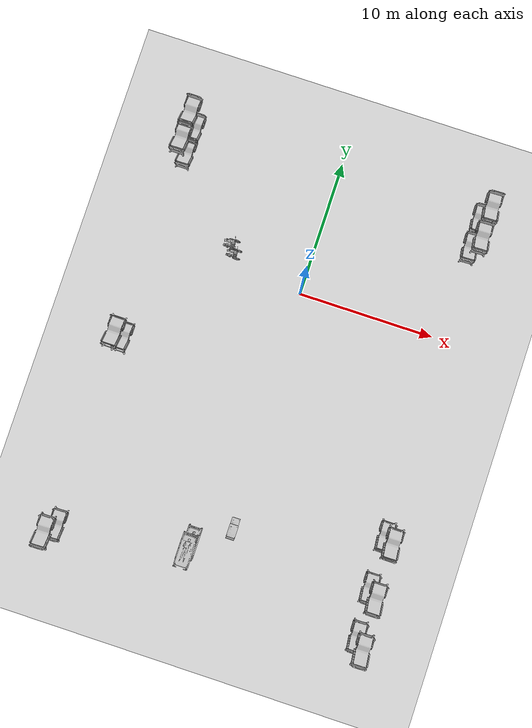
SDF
<sdf version="1.6">
 <world name="world">
  <gravity>0 0 -9.8</gravity>
  <physics default="0" name="default_physics" type="ode">
   <max_step_size>0.001</max_step_size>
   <real_time_factor>1</real_time_factor>
   <real_time_update_rate>1000</real_time_update_rate>
  </physics>
  <scene><ambient>0.6 0.6 0.6 1</ambient><background>0.4 0.4 0.4 1</background><shadows>false</shadows></scene>
  <plugin filename="gz-sim-physics-system" name="gz::sim::systems::Physics"/>
  <plugin filename="gz-sim-user-commands-system" name="gz::sim::systems::UserCommands"/>
  <plugin filename="gz-sim-scene-broadcaster-system" name="gz::sim::systems::SceneBroadcaster"/>
  <plugin filename="gz-sim-sensors-system" name="gz::sim::systems::Sensors">
   <render_engine>ogre2</render_engine>
  </plugin>
  <plugin filename="gz-sim-imu-system" name="gz::sim::systems::Imu"/>
  <plugin filename="gz-sim-contact-system" name="gz::sim::systems::Contact"/>
  <include><uri>model://sun</uri></include>
  <include><uri>model://ground_plane</uri><pose>0 0 -0.1 0 -0 0</pose></include>
  <include>
   <uri>model://CGMClassic</uri>
   <static>true</static>
   <name>CGMClassic_1</name>
   <pose>11.1777 -18.4129 0 0 0 -3.13719</pose>
  </include>
  <include>
   <uri>model://CGMClassic</uri>
   <static>true</static>
   <name>CGMClassic_2</name>
   <pose>11.1179 -14.6493 0 0 0 -3.13599</pose>
  </include>
  <include>
   <uri>model://PatientWheelChair</uri>
   <static>true</static>
   <name>PatientWheelChair_1</name>
   <pose>-5.46091 1.23577 0 0 0 -1.54828</pose>
  </include>
  <include>
   <uri>model://CGMClassic</uri>
   <static>true</static>
   <name>CGMClassic_3</name>
   <pose>-11.2304 -21.1134 0 0 0 -3.11834</pose>
  </include>
  <include>
   <uri>model://CGMClassic</uri>
   <static>true</static>
   <name>CGMClassic_4</name>
   <pose>-11.0878 -7.00992 0 0 -0 3.1351</pose>
  </include>
  <include>
   <uri>model://CGMClassic</uri>
   <static>true</static>
   <name>CGMClassic_5</name>
   <pose>-11.0106 8.9505 -0.008203 -0.035019 -0.000392 3.13388</pose>
  </include>
  <include>
   <uri>model://CGMClassic</uri>
   <static>true</static>
   <name>CGMClassic_6</name>
   <pose>-11.025 7.10335 0 -0.035021 1.8e-05 -3.13762</pose>
  </include>
  <include>
   <uri>model://TrolleyBedPatient</uri>
   <static>true</static>
   <name>TrolleyBedPatient_1</name>
   <pose>-1.83202 -19.2612 0 0 -0 0</pose>
  </include>
  <include>
   <uri>model://CGMClassic</uri>
   <static>true</static>
   <name>CGMClassic_7</name>
   <pose>10.6166 9.06291 -0.008203 -0.03501 0.000885 -3.11285</pose>
  </include>
  <include>
   <uri>model://CGMClassic</uri>
   <static>true</static>
   <name>CGMClassic_8</name>
   <pose>10.6006 6.90956 -0.008203 -0.035003 0.001133 -3.10576</pose>
  </include>
  <include>
   <uri>model://ParkingTrolleyMin</uri>
   <static>true</static>
   <name>ParkingTrolleyMin_1</name>
   <pose>0.715846 -17.1496 -0.000121 -1e-06 -0 0</pose>
  </include>
  <include>
   <uri>model://CGMClassic</uri>
   <static>true</static>
   <name>CGMClassic_9</name>
   <pose>11.3613 -21.8867 0 0 0 -3.12292</pose>
  </include>
  <include>
   <uri>model://CGMClassic</uri>
   <static>true</static>
   <name>floor_1_CGMClassic_1</name>
   <pose>11.1777 -18.4129 3.0 0 0 -3.13719</pose>
  </include>
  <include>
   <uri>model://CGMClassic</uri>
   <static>true</static>
   <name>floor_1_CGMClassic_2</name>
   <pose>11.1179 -14.6493 3.0 0 0 -3.13599</pose>
  </include>
  <include>
   <uri>model://PatientWheelChair</uri>
   <static>true</static>
   <name>floor_1_PatientWheelChair_1</name>
   <pose>-5.46091 1.23577 3.0 0 0 -1.54828</pose>
  </include>
  <include>
   <uri>model://CGMClassic</uri>
   <static>true</static>
   <name>floor_1_CGMClassic_3</name>
   <pose>-11.2304 -21.1134 3.0 0 0 -3.11834</pose>
  </include>
  <include>
   <uri>model://CGMClassic</uri>
   <static>true</static>
   <name>floor_1_CGMClassic_4</name>
   <pose>-11.0878 -7.00992 3.0 0 -0 3.1351</pose>
  </include>
  <include>
   <uri>model://CGMClassic</uri>
   <static>true</static>
   <name>floor_1_CGMClassic_5</name>
   <pose>-11.0106 8.9505 2.991797 -0.035019 -0.000392 3.13388</pose>
  </include>
  <include>
   <uri>model://CGMClassic</uri>
   <static>true</static>
   <name>floor_1_CGMClassic_6</name>
   <pose>-11.025 7.10335 3.0 -0.035021 1.8e-05 -3.13762</pose>
  </include>
  <include>
   <uri>model://TrolleyBedPatient</uri>
   <static>true</static>
   <name>floor_1_TrolleyBedPatient_1</name>
   <pose>-1.83202 -19.2612 3.0 0 -0 0</pose>
  </include>
  <include>
   <uri>model://CGMClassic</uri>
   <static>true</static>
   <name>floor_1_CGMClassic_7</name>
   <pose>10.6166 9.06291 2.991797 -0.03501 0.000885 -3.11285</pose>
  </include>
  <include>
   <uri>model://CGMClassic</uri>
   <static>true</static>
   <name>floor_1_CGMClassic_8</name>
   <pose>10.6006 6.90956 2.991797 -0.035003 0.001133 -3.10576</pose>
  </include>
  <include>
   <uri>model://ParkingTrolleyMin</uri>
   <static>true</static>
   <name>floor_1_ParkingTrolleyMin_1</name>
   <pose>0.715846 -17.1496 2.999879 -1e-06 -0 0</pose>
  </include>
  <include>
   <uri>model://CGMClassic</uri>
   <static>true</static>
   <name>floor_1_CGMClassic_9</name>
   <pose>11.3613 -21.8867 3.0 0 0 -3.12292</pose>
  </include>
 </world>
</sdf>

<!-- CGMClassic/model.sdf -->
<sdf version="1.6">
  <model name="CGMClassic">
   <static>true</static>
    <link name="body">
      <pose>0 0 0 0 0 0</pose>

      <visual name="visual">
        <geometry>
          <mesh>
            <uri>model://CGMClassic/meshes/CGMClassic.obj</uri>
            <scale>0.01 0.01 0.01</scale>
          </mesh>
        </geometry>
      </visual>

      <collision name="collision">
        <geometry>
          <mesh>
            <uri>model://CGMClassic/meshes/CGMClassic.obj</uri>
            <scale>0.01 0.01 0.01</scale>
          </mesh>
        </geometry>
      </collision>

    </link>
  </model>
</sdf>

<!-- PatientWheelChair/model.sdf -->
<sdf version="1.6">
  <model name="PatientWheelChair">
   <static>true</static>
    <link name="body">
      <pose>0 0 0 0 0 0</pose>

      <visual name="visual">
        <geometry>
          <mesh>
            <uri>model://PatientWheelChair/meshes/PatientWheelChair.obj</uri>
          </mesh>
        </geometry>
      </visual>

      <collision name="collision">
        <geometry>
          <mesh>
            <uri>model://PatientWheelChair/meshes/PatientWheelChair_Col.obj</uri>
          </mesh>
        </geometry>
      </collision>

    </link>
  </model>
</sdf>

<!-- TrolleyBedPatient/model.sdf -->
<sdf version="1.6">
  <model name="TrolleyBedPatient">
   <static>true</static>
    <link name="body">
      <pose>0 0 0 0 0 0</pose>

      <visual name="visual">
        <geometry>
          <mesh>
            <uri>model://TrolleyBedPatient/meshes/TrolleyBedPatient.obj</uri>
          </mesh>
        </geometry>
      </visual>

      <collision name="collision">
        <geometry>
          <mesh>
            <uri>model://TrolleyBedPatient/meshes/TrolleyBedPatient.obj</uri>
          </mesh>
        </geometry>
      </collision>

    </link>
  </model>
</sdf>

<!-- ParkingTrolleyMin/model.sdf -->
<sdf version="1.6">
  <model name="ParkingTrolleyMin">
    <link name="body">
      <pose>0 0 0 0 0 0</pose>

        <visual name="visual">
          <pose>0 0 0 0 0 0</pose>
          <geometry>
            <mesh><uri>model://ParkingTrolleyMin/meshes/trolleymin.obj</uri></mesh>
          </geometry>
        </visual>

        <collision name="collision">
          <pose>0 0 0 0 0 0</pose>
          <geometry>
            <mesh><uri>model://ParkingTrolleyMin/meshes/trolleymin.obj</uri></mesh>
          </geometry>
        </collision>

    </link>
  </model>
</sdf>
